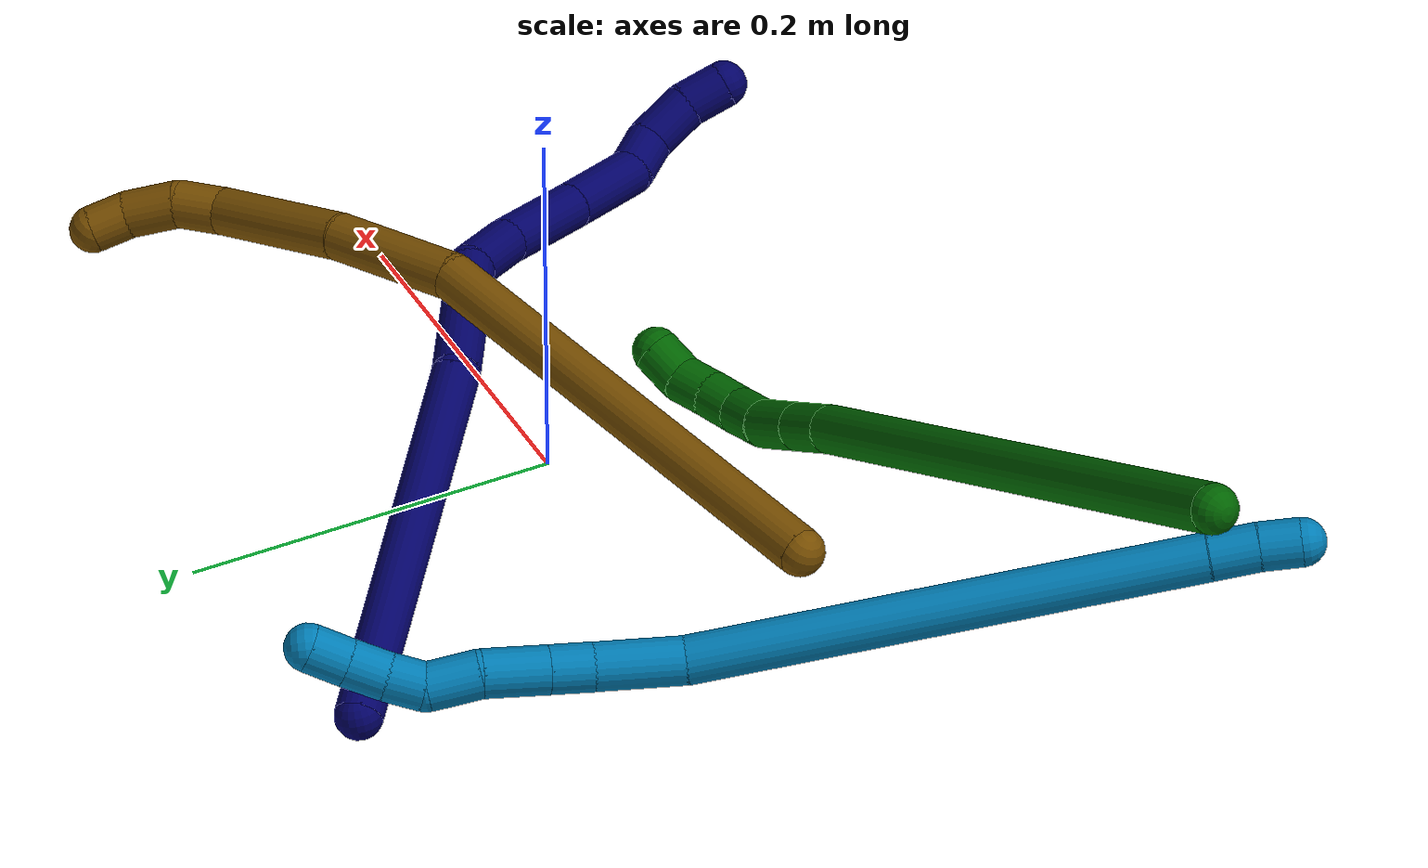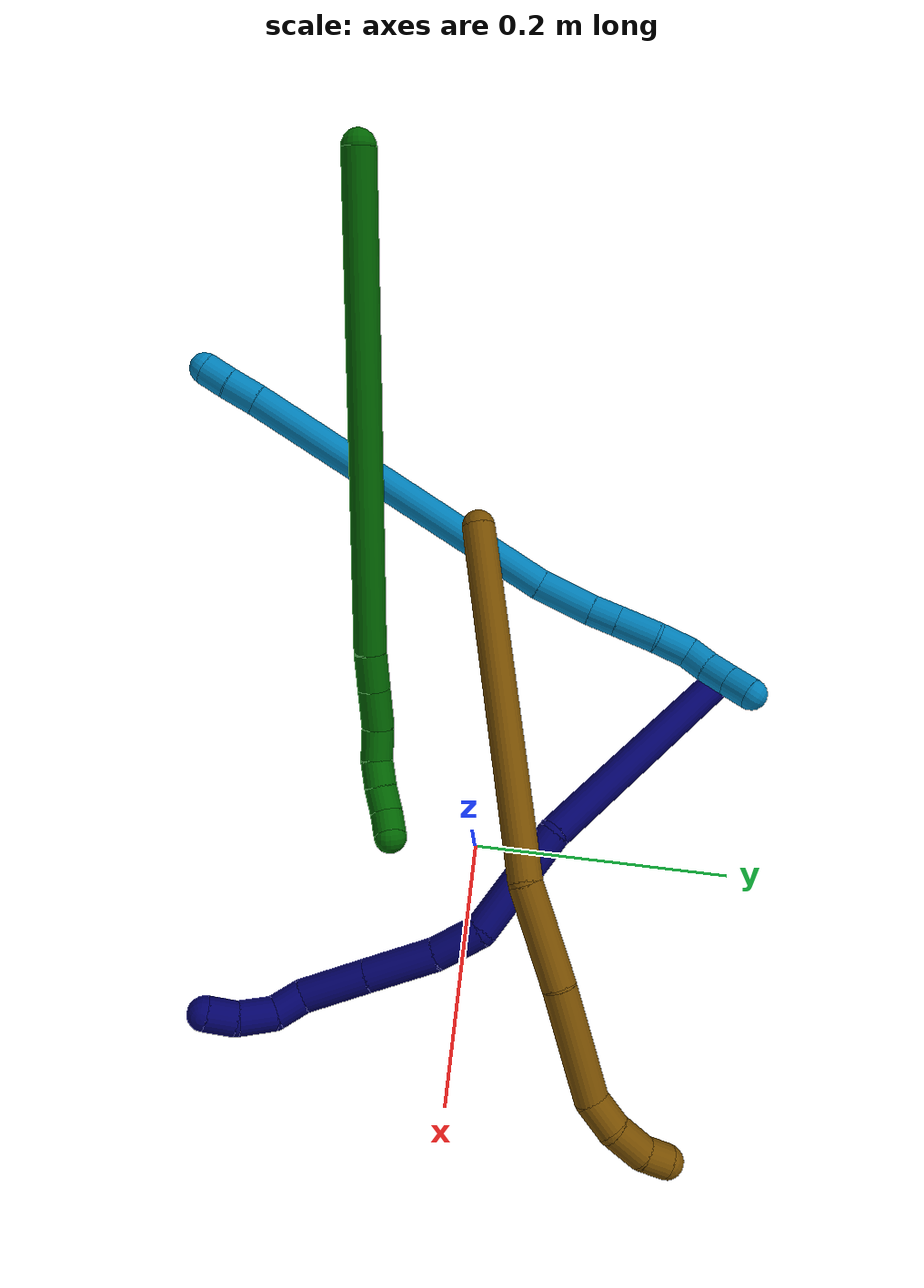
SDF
<sdf version="1.7">
 <world name="default">
  <model name="6">
   <static>0</static>
   <link name="6">
    <collision name="collision-cylinder-e_1_1_4">
     <pose>-0.025898 -0.013031 -0.173735 3.06672 -0.147569 -2.20367</pose>
     <geometry><cylinder><radius>0.0125</radius><length>0.352274</length></cylinder></geometry>
     <surface>
      <friction><ode><mu>1.16</mu><mu2>1.16</mu2><slip1>0</slip1><slip2>0</slip2></ode></friction>
      <contact><ode><kp>1e+06</kp><kd>1</kd><max_vel>0</max_vel><min_depth>0.001</min_depth></ode></contact>
     </surface>
    </collision>
    <visual name="visual-cylinder-e_1_1_4">
     <pose>-0.025898 -0.013031 -0.173735 3.06672 -0.147569 -2.20367</pose>
     <geometry><cylinder><radius>0.0125</radius><length>0.352274</length></cylinder></geometry>
     <material><ambient>0 0.392157 0.003922 1</ambient></material>
    </visual>
    <collision name="collision-cylinder-e_2_4_5">
     <pose>-0.054609 -0.026166 -0.36152 3.13427 -0.197544 -3.06777</pose>
     <geometry><cylinder><radius>0.0125</radius><length>0.028659</length></cylinder></geometry>
     <surface>
      <friction><ode><mu>1.16</mu><mu2>1.16</mu2><slip1>0</slip1><slip2>0</slip2></ode></friction>
      <contact><ode><kp>1e+06</kp><kd>1</kd><max_vel>0</max_vel><min_depth>0.001</min_depth></ode></contact>
     </surface>
    </collision>
    <visual name="visual-cylinder-e_2_4_5">
     <pose>-0.054609 -0.026166 -0.36152 3.13427 -0.197544 -3.06777</pose>
     <geometry><cylinder><radius>0.0125</radius><length>0.028659</length></cylinder></geometry>
     <material><ambient>0 0.392157 0.003922 1</ambient></material>
    </visual>
    <collision name="collision-cylinder-e_3_5_6">
     <pose>-0.060469 -0.026342 -0.391111 3.13688 -0.193667 -3.09305</pose>
     <geometry><cylinder><radius>0.0125</radius><length>0.031674</length></cylinder></geometry>
     <surface>
      <friction><ode><mu>1.16</mu><mu2>1.16</mu2><slip1>0</slip1><slip2>0</slip2></ode></friction>
      <contact><ode><kp>1e+06</kp><kd>1</kd><max_vel>0</max_vel><min_depth>0.001</min_depth></ode></contact>
     </surface>
    </collision>
    <visual name="visual-cylinder-e_3_5_6">
     <pose>-0.060469 -0.026342 -0.391111 3.13688 -0.193667 -3.09305</pose>
     <geometry><cylinder><radius>0.0125</radius><length>0.031674</length></cylinder></geometry>
     <material><ambient>0 0.392157 0.003922 1</ambient></material>
    </visual>
    <collision name="collision-cylinder-e_4_6_7">
     <pose>-0.063468 -0.027636 -0.41939 3.04608 0.003788 0.079218</pose>
     <geometry><cylinder><radius>0.0125</radius><length>0.025592</length></cylinder></geometry>
     <surface>
      <friction><ode><mu>1.16</mu><mu2>1.16</mu2><slip1>0</slip1><slip2>0</slip2></ode></friction>
      <contact><ode><kp>1e+06</kp><kd>1</kd><max_vel>0</max_vel><min_depth>0.001</min_depth></ode></contact>
     </surface>
    </collision>
    <visual name="visual-cylinder-e_4_6_7">
     <pose>-0.063468 -0.027636 -0.41939 3.04608 0.003788 0.079218</pose>
     <geometry><cylinder><radius>0.0125</radius><length>0.025592</length></cylinder></geometry>
     <material><ambient>0 0.392157 0.003922 1</ambient></material>
    </visual>
    <collision name="collision-cylinder-e_5_7_8">
     <pose>-0.061342 -0.027244 -0.442291 -2.98433 0.199252 -1.80648</pose>
     <geometry><cylinder><radius>0.0125</radius><length>0.020996</length></cylinder></geometry>
     <surface>
      <friction><ode><mu>1.16</mu><mu2>1.16</mu2><slip1>0</slip1><slip2>0</slip2></ode></friction>
      <contact><ode><kp>1e+06</kp><kd>1</kd><max_vel>0</max_vel><min_depth>0.001</min_depth></ode></contact>
     </surface>
    </collision>
    <visual name="visual-cylinder-e_5_7_8">
     <pose>-0.061342 -0.027244 -0.442291 -2.98433 0.199252 -1.80648</pose>
     <geometry><cylinder><radius>0.0125</radius><length>0.020996</length></cylinder></geometry>
     <material><ambient>0 0.392157 0.003922 1</ambient></material>
    </visual>
    <collision name="collision-cylinder-e_6_8_9">
     <pose>-0.056896 -0.023016 -0.462125 -2.8773 0.23214 -1.44011</pose>
     <geometry><cylinder><radius>0.0125</radius><length>0.020589</length></cylinder></geometry>
     <surface>
      <friction><ode><mu>1.16</mu><mu2>1.16</mu2><slip1>0</slip1><slip2>0</slip2></ode></friction>
      <contact><ode><kp>1e+06</kp><kd>1</kd><max_vel>0</max_vel><min_depth>0.001</min_depth></ode></contact>
     </surface>
    </collision>
    <visual name="visual-cylinder-e_6_8_9">
     <pose>-0.056896 -0.023016 -0.462125 -2.8773 0.23214 -1.44011</pose>
     <geometry><cylinder><radius>0.0125</radius><length>0.020589</length></cylinder></geometry>
     <material><ambient>0 0.392157 0.003922 1</ambient></material>
    </visual>
    <collision name="collision-cylinder-e_7_9_2">
     <pose>-0.048526 -0.017561 -0.479418 -2.78529 0.635651 -2.14</pose>
     <geometry><cylinder><radius>0.0125</radius><length>0.020215</length></cylinder></geometry>
     <surface>
      <friction><ode><mu>1.16</mu><mu2>1.16</mu2><slip1>0</slip1><slip2>0</slip2></ode></friction>
      <contact><ode><kp>1e+06</kp><kd>1</kd><max_vel>0</max_vel><min_depth>0.001</min_depth></ode></contact>
     </surface>
    </collision>
    <visual name="visual-cylinder-e_7_9_2">
     <pose>-0.048526 -0.017561 -0.479418 -2.78529 0.635651 -2.14</pose>
     <geometry><cylinder><radius>0.0125</radius><length>0.020215</length></cylinder></geometry>
     <material><ambient>0 0.392157 0.003922 1</ambient></material>
    </visual>
    <collision name="collision-sphere-2">
     <pose>-0.042526 -0.014724 -0.48704 0 -0 0</pose>
     <geometry><sphere><radius>0.0125</radius></sphere></geometry>
     <surface>
      <friction><ode><mu>1.16</mu><mu2>1.16</mu2><slip1>0</slip1><slip2>0</slip2></ode></friction>
      <contact><ode><kp>1e+06</kp><kd>1</kd><max_vel>0</max_vel><min_depth>0.001</min_depth></ode></contact>
     </surface>
    </collision>
    <visual name="visual-sphere-2">
     <pose>-0.042526 -0.014724 -0.48704 0 -0 0</pose>
     <geometry><sphere><radius>0.0125</radius></sphere></geometry>
     <material><ambient>0 0.392157 0.003922 1</ambient></material>
    </visual>
    <collision name="collision-sphere-9">
     <pose>-0.054527 -0.020398 -0.471795 0 -0 0</pose>
     <geometry><sphere><radius>0.0125</radius></sphere></geometry>
     <surface>
      <friction><ode><mu>1.16</mu><mu2>1.16</mu2><slip1>0</slip1><slip2>0</slip2></ode></friction>
      <contact><ode><kp>1e+06</kp><kd>1</kd><max_vel>0</max_vel><min_depth>0.001</min_depth></ode></contact>
     </surface>
    </collision>
    <visual name="visual-sphere-9">
     <pose>-0.054527 -0.020398 -0.471795 0 -0 0</pose>
     <geometry><sphere><radius>0.0125</radius></sphere></geometry>
     <material><ambient>0 0.392157 0.003922 1</ambient></material>
    </visual>
    <collision name="collision-sphere-4">
     <pose>-0.051796 -0.026063 -0.347469 0 -0 0</pose>
     <geometry><sphere><radius>0.0125</radius></sphere></geometry>
     <surface>
      <friction><ode><mu>1.16</mu><mu2>1.16</mu2><slip1>0</slip1><slip2>0</slip2></ode></friction>
      <contact><ode><kp>1e+06</kp><kd>1</kd><max_vel>0</max_vel><min_depth>0.001</min_depth></ode></contact>
     </surface>
    </collision>
    <visual name="visual-sphere-4">
     <pose>-0.051796 -0.026063 -0.347469 0 -0 0</pose>
     <geometry><sphere><radius>0.0125</radius></sphere></geometry>
     <material><ambient>0 0.392157 0.003922 1</ambient></material>
    </visual>
    <collision name="collision-sphere-1">
     <geometry><sphere><radius>0.0125</radius></sphere></geometry>
     <surface>
      <friction><ode><mu>1.16</mu><mu2>1.16</mu2><slip1>0</slip1><slip2>0</slip2></ode></friction>
      <contact><ode><kp>1e+06</kp><kd>1</kd><max_vel>0</max_vel><min_depth>0.001</min_depth></ode></contact>
     </surface>
    </collision>
    <visual name="visual-sphere-1">
     <geometry><sphere><radius>0.0125</radius></sphere></geometry>
     <material><ambient>0 0.392157 0.003922 1</ambient></material>
    </visual>
    <collision name="collision-sphere-8">
     <pose>-0.059264 -0.025633 -0.452454 0 -0 0</pose>
     <geometry><sphere><radius>0.0125</radius></sphere></geometry>
     <surface>
      <friction><ode><mu>1.16</mu><mu2>1.16</mu2><slip1>0</slip1><slip2>0</slip2></ode></friction>
      <contact><ode><kp>1e+06</kp><kd>1</kd><max_vel>0</max_vel><min_depth>0.001</min_depth></ode></contact>
     </surface>
    </collision>
    <visual name="visual-sphere-8">
     <pose>-0.059264 -0.025633 -0.452454 0 -0 0</pose>
     <geometry><sphere><radius>0.0125</radius></sphere></geometry>
     <material><ambient>0 0.392157 0.003922 1</ambient></material>
    </visual>
    <collision name="collision-sphere-5">
     <pose>-0.057421 -0.026269 -0.37557 0 -0 0</pose>
     <geometry><sphere><radius>0.0125</radius></sphere></geometry>
     <surface>
      <friction><ode><mu>1.16</mu><mu2>1.16</mu2><slip1>0</slip1><slip2>0</slip2></ode></friction>
      <contact><ode><kp>1e+06</kp><kd>1</kd><max_vel>0</max_vel><min_depth>0.001</min_depth></ode></contact>
     </surface>
    </collision>
    <visual name="visual-sphere-5">
     <pose>-0.057421 -0.026269 -0.37557 0 -0 0</pose>
     <geometry><sphere><radius>0.0125</radius></sphere></geometry>
     <material><ambient>0 0.392157 0.003922 1</ambient></material>
    </visual>
    <collision name="collision-sphere-6">
     <pose>-0.063517 -0.026415 -0.406652 0 -0 0</pose>
     <geometry><sphere><radius>0.0125</radius></sphere></geometry>
     <surface>
      <friction><ode><mu>1.16</mu><mu2>1.16</mu2><slip1>0</slip1><slip2>0</slip2></ode></friction>
      <contact><ode><kp>1e+06</kp><kd>1</kd><max_vel>0</max_vel><min_depth>0.001</min_depth></ode></contact>
     </surface>
    </collision>
    <visual name="visual-sphere-6">
     <pose>-0.063517 -0.026415 -0.406652 0 -0 0</pose>
     <geometry><sphere><radius>0.0125</radius></sphere></geometry>
     <material><ambient>0 0.392157 0.003922 1</ambient></material>
    </visual>
    <collision name="collision-sphere-7">
     <pose>-0.06342 -0.028856 -0.432127 0 -0 0</pose>
     <geometry><sphere><radius>0.0125</radius></sphere></geometry>
     <surface>
      <friction><ode><mu>1.16</mu><mu2>1.16</mu2><slip1>0</slip1><slip2>0</slip2></ode></friction>
      <contact><ode><kp>1e+06</kp><kd>1</kd><max_vel>0</max_vel><min_depth>0.001</min_depth></ode></contact>
     </surface>
    </collision>
    <visual name="visual-sphere-7">
     <pose>-0.06342 -0.028856 -0.432127 0 -0 0</pose>
     <geometry><sphere><radius>0.0125</radius></sphere></geometry>
     <material><ambient>0 0.392157 0.003922 1</ambient></material>
    </visual>
    <inertial>
     <pose>-0.035336 -0.016566 -0.246354 0 -0 0</pose>
     <mass>0.5</mass>
     <inertia>
      <ixx>-0.005069</ixx>
      <ixy>0</ixy>
      <ixz>0</ixz>
      <iyy>-0.000727</iyy>
      <iyz>0</iyz>
      <izz>0.000769</izz>
     </inertia>
    </inertial>
   </link>
   <pose>-0.443478 -0.13061 0.23605 0.595372 -1.20321 -0.468026</pose>
  </model>
  <model name="7">
   <static>0</static>
   <link name="7">
    <collision name="collision-cylinder-e_1_1_4">
     <pose>0.082535 -0.0284 0.049938 0.517095 0.962729 0.274549</pose>
     <geometry><cylinder><radius>0.0125</radius><length>0.201121</length></cylinder></geometry>
     <surface>
      <friction><ode><mu>1.16</mu><mu2>1.16</mu2><slip1>0</slip1><slip2>0</slip2></ode></friction>
      <contact><ode><kp>1e+06</kp><kd>1</kd><max_vel>0</max_vel><min_depth>0.001</min_depth></ode></contact>
     </surface>
    </collision>
    <visual name="visual-cylinder-e_1_1_4">
     <pose>0.082535 -0.0284 0.049938 0.517095 0.962729 0.274549</pose>
     <geometry><cylinder><radius>0.0125</radius><length>0.201121</length></cylinder></geometry>
     <material><ambient>0.003922 0 0.403922 1</ambient></material>
    </visual>
    <collision name="collision-cylinder-e_2_4_5">
     <pose>0.20745 -0.059369 0.109117 0.271133 1.34821 0.217104</pose>
     <geometry><cylinder><radius>0.0125</radius><length>0.086903</length></cylinder></geometry>
     <surface>
      <friction><ode><mu>1.16</mu><mu2>1.16</mu2><slip1>0</slip1><slip2>0</slip2></ode></friction>
      <contact><ode><kp>1e+06</kp><kd>1</kd><max_vel>0</max_vel><min_depth>0.001</min_depth></ode></contact>
     </surface>
    </collision>
    <visual name="visual-cylinder-e_2_4_5">
     <pose>0.20745 -0.059369 0.109117 0.271133 1.34821 0.217104</pose>
     <geometry><cylinder><radius>0.0125</radius><length>0.086903</length></cylinder></geometry>
     <material><ambient>0.003922 0 0.403922 1</ambient></material>
    </visual>
    <collision name="collision-cylinder-e_3_5_6">
     <pose>0.266311 -0.069696 0.116656 1.78675 1.12172 1.32595</pose>
     <geometry><cylinder><radius>0.0125</radius><length>0.036591</length></cylinder></geometry>
     <surface>
      <friction><ode><mu>1.16</mu><mu2>1.16</mu2><slip1>0</slip1><slip2>0</slip2></ode></friction>
      <contact><ode><kp>1e+06</kp><kd>1</kd><max_vel>0</max_vel><min_depth>0.001</min_depth></ode></contact>
     </surface>
    </collision>
    <visual name="visual-cylinder-e_3_5_6">
     <pose>0.266311 -0.069696 0.116656 1.78675 1.12172 1.32595</pose>
     <geometry><cylinder><radius>0.0125</radius><length>0.036591</length></cylinder></geometry>
     <material><ambient>0.003922 0 0.403922 1</ambient></material>
    </visual>
    <collision name="collision-cylinder-e_4_6_7">
     <pose>0.304013 -0.092706 0.112703 1.71736 0.942496 1.06648</pose>
     <geometry><cylinder><radius>0.0125</radius><length>0.052459</length></cylinder></geometry>
     <surface>
      <friction><ode><mu>1.16</mu><mu2>1.16</mu2><slip1>0</slip1><slip2>0</slip2></ode></friction>
      <contact><ode><kp>1e+06</kp><kd>1</kd><max_vel>0</max_vel><min_depth>0.001</min_depth></ode></contact>
     </surface>
    </collision>
    <visual name="visual-cylinder-e_4_6_7">
     <pose>0.304013 -0.092706 0.112703 1.71736 0.942496 1.06648</pose>
     <geometry><cylinder><radius>0.0125</radius><length>0.052459</length></cylinder></geometry>
     <material><ambient>0.003922 0 0.403922 1</ambient></material>
    </visual>
    <collision name="collision-cylinder-e_5_7_8">
     <pose>0.345304 -0.12241 0.108769 1.68673 0.94352 1.04072</pose>
     <geometry><cylinder><radius>0.0125</radius><length>0.049579</length></cylinder></geometry>
     <surface>
      <friction><ode><mu>1.16</mu><mu2>1.16</mu2><slip1>0</slip1><slip2>0</slip2></ode></friction>
      <contact><ode><kp>1e+06</kp><kd>1</kd><max_vel>0</max_vel><min_depth>0.001</min_depth></ode></contact>
     </surface>
    </collision>
    <visual name="visual-cylinder-e_5_7_8">
     <pose>0.345304 -0.12241 0.108769 1.68673 0.94352 1.04072</pose>
     <geometry><cylinder><radius>0.0125</radius><length>0.049579</length></cylinder></geometry>
     <material><ambient>0.003922 0 0.403922 1</ambient></material>
    </visual>
    <collision name="collision-cylinder-e_6_8_9">
     <pose>0.375024 -0.141948 0.110815 0.938065 0.991999 0.535266</pose>
     <geometry><cylinder><radius>0.0125</radius><length>0.023057</length></cylinder></geometry>
     <surface>
      <friction><ode><mu>1.16</mu><mu2>1.16</mu2><slip1>0</slip1><slip2>0</slip2></ode></friction>
      <contact><ode><kp>1e+06</kp><kd>1</kd><max_vel>0</max_vel><min_depth>0.001</min_depth></ode></contact>
     </surface>
    </collision>
    <visual name="visual-cylinder-e_6_8_9">
     <pose>0.375024 -0.141948 0.110815 0.938065 0.991999 0.535266</pose>
     <geometry><cylinder><radius>0.0125</radius><length>0.023057</length></cylinder></geometry>
     <material><ambient>0.003922 0 0.403922 1</ambient></material>
    </visual>
    <collision name="collision-cylinder-e_7_9_10">
     <pose>0.391998 -0.157547 0.1199 1.09968 0.555461 0.345974</pose>
     <geometry><cylinder><radius>0.0125</radius><length>0.027774</length></cylinder></geometry>
     <surface>
      <friction><ode><mu>1.16</mu><mu2>1.16</mu2><slip1>0</slip1><slip2>0</slip2></ode></friction>
      <contact><ode><kp>1e+06</kp><kd>1</kd><max_vel>0</max_vel><min_depth>0.001</min_depth></ode></contact>
     </surface>
    </collision>
    <visual name="visual-cylinder-e_7_9_10">
     <pose>0.391998 -0.157547 0.1199 1.09968 0.555461 0.345974</pose>
     <geometry><cylinder><radius>0.0125</radius><length>0.027774</length></cylinder></geometry>
     <material><ambient>0.003922 0 0.403922 1</ambient></material>
    </visual>
    <collision name="collision-cylinder-e_8_10_2">
     <pose>0.402838 -0.178399 0.127996 1.31161 0.317691 0.245273</pose>
     <geometry><cylinder><radius>0.0125</radius><length>0.022516</length></cylinder></geometry>
     <surface>
      <friction><ode><mu>1.16</mu><mu2>1.16</mu2><slip1>0</slip1><slip2>0</slip2></ode></friction>
      <contact><ode><kp>1e+06</kp><kd>1</kd><max_vel>0</max_vel><min_depth>0.001</min_depth></ode></contact>
     </surface>
    </collision>
    <visual name="visual-cylinder-e_8_10_2">
     <pose>0.402838 -0.178399 0.127996 1.31161 0.317691 0.245273</pose>
     <geometry><cylinder><radius>0.0125</radius><length>0.022516</length></cylinder></geometry>
     <material><ambient>0.003922 0 0.403922 1</ambient></material>
    </visual>
    <collision name="collision-sphere-2">
     <pose>0.406355 -0.188736 0.130737 0 -0 0</pose>
     <geometry><sphere><radius>0.0125</radius></sphere></geometry>
     <surface>
      <friction><ode><mu>1.16</mu><mu2>1.16</mu2><slip1>0</slip1><slip2>0</slip2></ode></friction>
      <contact><ode><kp>1e+06</kp><kd>1</kd><max_vel>0</max_vel><min_depth>0.001</min_depth></ode></contact>
     </surface>
    </collision>
    <visual name="visual-sphere-2">
     <pose>0.406355 -0.188736 0.130737 0 -0 0</pose>
     <geometry><sphere><radius>0.0125</radius></sphere></geometry>
     <material><ambient>0.003922 0 0.403922 1</ambient></material>
    </visual>
    <collision name="collision-sphere-10">
     <pose>0.399322 -0.168061 0.125255 0 -0 0</pose>
     <geometry><sphere><radius>0.0125</radius></sphere></geometry>
     <surface>
      <friction><ode><mu>1.16</mu><mu2>1.16</mu2><slip1>0</slip1><slip2>0</slip2></ode></friction>
      <contact><ode><kp>1e+06</kp><kd>1</kd><max_vel>0</max_vel><min_depth>0.001</min_depth></ode></contact>
     </surface>
    </collision>
    <visual name="visual-sphere-10">
     <pose>0.399322 -0.168061 0.125255 0 -0 0</pose>
     <geometry><sphere><radius>0.0125</radius></sphere></geometry>
     <material><ambient>0.003922 0 0.403922 1</ambient></material>
    </visual>
    <collision name="collision-sphere-9">
     <pose>0.384675 -0.147033 0.114544 0 -0 0</pose>
     <geometry><sphere><radius>0.0125</radius></sphere></geometry>
     <surface>
      <friction><ode><mu>1.16</mu><mu2>1.16</mu2><slip1>0</slip1><slip2>0</slip2></ode></friction>
      <contact><ode><kp>1e+06</kp><kd>1</kd><max_vel>0</max_vel><min_depth>0.001</min_depth></ode></contact>
     </surface>
    </collision>
    <visual name="visual-sphere-9">
     <pose>0.384675 -0.147033 0.114544 0 -0 0</pose>
     <geometry><sphere><radius>0.0125</radius></sphere></geometry>
     <material><ambient>0.003922 0 0.403922 1</ambient></material>
    </visual>
    <collision name="collision-sphere-4">
     <pose>0.165071 -0.0568 0.099875 0 -0 0</pose>
     <geometry><sphere><radius>0.0125</radius></sphere></geometry>
     <surface>
      <friction><ode><mu>1.16</mu><mu2>1.16</mu2><slip1>0</slip1><slip2>0</slip2></ode></friction>
      <contact><ode><kp>1e+06</kp><kd>1</kd><max_vel>0</max_vel><min_depth>0.001</min_depth></ode></contact>
     </surface>
    </collision>
    <visual name="visual-sphere-4">
     <pose>0.165071 -0.0568 0.099875 0 -0 0</pose>
     <geometry><sphere><radius>0.0125</radius></sphere></geometry>
     <material><ambient>0.003922 0 0.403922 1</ambient></material>
    </visual>
    <collision name="collision-sphere-1">
     <geometry><sphere><radius>0.0125</radius></sphere></geometry>
     <surface>
      <friction><ode><mu>1.16</mu><mu2>1.16</mu2><slip1>0</slip1><slip2>0</slip2></ode></friction>
      <contact><ode><kp>1e+06</kp><kd>1</kd><max_vel>0</max_vel><min_depth>0.001</min_depth></ode></contact>
     </surface>
    </collision>
    <visual name="visual-sphere-1">
     <geometry><sphere><radius>0.0125</radius></sphere></geometry>
     <material><ambient>0.003922 0 0.403922 1</ambient></material>
    </visual>
    <collision name="collision-sphere-8">
     <pose>0.365374 -0.136862 0.107086 0 -0 0</pose>
     <geometry><sphere><radius>0.0125</radius></sphere></geometry>
     <surface>
      <friction><ode><mu>1.16</mu><mu2>1.16</mu2><slip1>0</slip1><slip2>0</slip2></ode></friction>
      <contact><ode><kp>1e+06</kp><kd>1</kd><max_vel>0</max_vel><min_depth>0.001</min_depth></ode></contact>
     </surface>
    </collision>
    <visual name="visual-sphere-8">
     <pose>0.365374 -0.136862 0.107086 0 -0 0</pose>
     <geometry><sphere><radius>0.0125</radius></sphere></geometry>
     <material><ambient>0.003922 0 0.403922 1</ambient></material>
    </visual>
    <collision name="collision-sphere-5">
     <pose>0.24983 -0.061938 0.118358 0 -0 0</pose>
     <geometry><sphere><radius>0.0125</radius></sphere></geometry>
     <surface>
      <friction><ode><mu>1.16</mu><mu2>1.16</mu2><slip1>0</slip1><slip2>0</slip2></ode></friction>
      <contact><ode><kp>1e+06</kp><kd>1</kd><max_vel>0</max_vel><min_depth>0.001</min_depth></ode></contact>
     </surface>
    </collision>
    <visual name="visual-sphere-5">
     <pose>0.24983 -0.061938 0.118358 0 -0 0</pose>
     <geometry><sphere><radius>0.0125</radius></sphere></geometry>
     <material><ambient>0.003922 0 0.403922 1</ambient></material>
    </visual>
    <collision name="collision-sphere-6">
     <pose>0.282792 -0.077454 0.114954 0 -0 0</pose>
     <geometry><sphere><radius>0.0125</radius></sphere></geometry>
     <surface>
      <friction><ode><mu>1.16</mu><mu2>1.16</mu2><slip1>0</slip1><slip2>0</slip2></ode></friction>
      <contact><ode><kp>1e+06</kp><kd>1</kd><max_vel>0</max_vel><min_depth>0.001</min_depth></ode></contact>
     </surface>
    </collision>
    <visual name="visual-sphere-6">
     <pose>0.282792 -0.077454 0.114954 0 -0 0</pose>
     <geometry><sphere><radius>0.0125</radius></sphere></geometry>
     <material><ambient>0.003922 0 0.403922 1</ambient></material>
    </visual>
    <collision name="collision-sphere-7">
     <pose>0.325233 -0.107958 0.110452 0 -0 0</pose>
     <geometry><sphere><radius>0.0125</radius></sphere></geometry>
     <surface>
      <friction><ode><mu>1.16</mu><mu2>1.16</mu2><slip1>0</slip1><slip2>0</slip2></ode></friction>
      <contact><ode><kp>1e+06</kp><kd>1</kd><max_vel>0</max_vel><min_depth>0.001</min_depth></ode></contact>
     </surface>
    </collision>
    <visual name="visual-sphere-7">
     <pose>0.325233 -0.107958 0.110452 0 -0 0</pose>
     <geometry><sphere><radius>0.0125</radius></sphere></geometry>
     <material><ambient>0.003922 0 0.403922 1</ambient></material>
    </visual>
    <inertial>
     <pose>0.21209 -0.072038 0.087733 0 -0 0</pose>
     <mass>0.5</mass>
     <inertia>
      <ixx>0.000561</ixx>
      <ixy>0</ixy>
      <ixz>0</ixz>
      <iyy>0.000844</iyy>
      <iyz>0</iyz>
      <izz>-0.00042</izz>
     </inertia>
    </inertial>
   </link>
   <pose>-0.152723 0.178597 0.01168 -0.197931 0.200855 -0.519104</pose>
  </model>
  <model name="9">
   <static>0</static>
   <link name="9">
    <collision name="collision-cylinder-e_1_1_4">
     <pose>6.3e-05 0.000123 -0.010517 -3.12993 0.006019 -0.953171</pose>
     <geometry><cylinder><radius>0.0125</radius><length>0.021037</length></cylinder></geometry>
     <surface>
      <friction><ode><mu>1.16</mu><mu2>1.16</mu2><slip1>0</slip1><slip2>0</slip2></ode></friction>
      <contact><ode><kp>1e+06</kp><kd>1</kd><max_vel>0</max_vel><min_depth>0.001</min_depth></ode></contact>
     </surface>
    </collision>
    <visual name="visual-cylinder-e_1_1_4">
     <pose>6.3e-05 0.000123 -0.010517 -3.12993 0.006019 -0.953171</pose>
     <geometry><cylinder><radius>0.0125</radius><length>0.021037</length></cylinder></geometry>
     <material><ambient>0 0.490196 0.709804 1</ambient></material>
    </visual>
    <collision name="collision-cylinder-e_2_4_5">
     <pose>-0.000847 0.000226 -0.033439 3.14005 -0.078333 -3.10228</pose>
     <geometry><cylinder><radius>0.0125</radius><length>0.024885</length></cylinder></geometry>
     <surface>
      <friction><ode><mu>1.16</mu><mu2>1.16</mu2><slip1>0</slip1><slip2>0</slip2></ode></friction>
      <contact><ode><kp>1e+06</kp><kd>1</kd><max_vel>0</max_vel><min_depth>0.001</min_depth></ode></contact>
     </surface>
    </collision>
    <visual name="visual-cylinder-e_2_4_5">
     <pose>-0.000847 0.000226 -0.033439 3.14005 -0.078333 -3.10228</pose>
     <geometry><cylinder><radius>0.0125</radius><length>0.024885</length></cylinder></geometry>
     <material><ambient>0 0.490196 0.709804 1</ambient></material>
    </visual>
    <collision name="collision-cylinder-e_3_5_6">
     <pose>-0.01065 -0.006647 -0.176785 3.0893 -0.067236 -1.81967</pose>
     <geometry><cylinder><radius>0.0125</radius><length>0.262836</length></cylinder></geometry>
     <surface>
      <friction><ode><mu>1.16</mu><mu2>1.16</mu2><slip1>0</slip1><slip2>0</slip2></ode></friction>
      <contact><ode><kp>1e+06</kp><kd>1</kd><max_vel>0</max_vel><min_depth>0.001</min_depth></ode></contact>
     </surface>
    </collision>
    <visual name="visual-cylinder-e_3_5_6">
     <pose>-0.01065 -0.006647 -0.176785 3.0893 -0.067236 -1.81967</pose>
     <geometry><cylinder><radius>0.0125</radius><length>0.262836</length></cylinder></geometry>
     <material><ambient>0 0.490196 0.709804 1</ambient></material>
    </visual>
    <collision name="collision-cylinder-e_4_6_7">
     <pose>-0.019139 -0.009916 -0.330488 -2.98542 0.014763 -0.18812</pose>
     <geometry><cylinder><radius>0.0125</radius><length>0.046089</length></cylinder></geometry>
     <surface>
      <friction><ode><mu>1.16</mu><mu2>1.16</mu2><slip1>0</slip1><slip2>0</slip2></ode></friction>
      <contact><ode><kp>1e+06</kp><kd>1</kd><max_vel>0</max_vel><min_depth>0.001</min_depth></ode></contact>
     </surface>
    </collision>
    <visual name="visual-cylinder-e_4_6_7">
     <pose>-0.019139 -0.009916 -0.330488 -2.98542 0.014763 -0.18812</pose>
     <geometry><cylinder><radius>0.0125</radius><length>0.046089</length></cylinder></geometry>
     <material><ambient>0 0.490196 0.709804 1</ambient></material>
    </visual>
    <collision name="collision-cylinder-e_5_7_8">
     <pose>-0.018744 -0.003737 -0.364171 -2.90827 0.004936 -0.042112</pose>
     <geometry><cylinder><radius>0.0125</radius><length>0.022451</length></cylinder></geometry>
     <surface>
      <friction><ode><mu>1.16</mu><mu2>1.16</mu2><slip1>0</slip1><slip2>0</slip2></ode></friction>
      <contact><ode><kp>1e+06</kp><kd>1</kd><max_vel>0</max_vel><min_depth>0.001</min_depth></ode></contact>
     </surface>
    </collision>
    <visual name="visual-cylinder-e_5_7_8">
     <pose>-0.018744 -0.003737 -0.364171 -2.90827 0.004936 -0.042112</pose>
     <geometry><cylinder><radius>0.0125</radius><length>0.022451</length></cylinder></geometry>
     <material><ambient>0 0.490196 0.709804 1</ambient></material>
    </visual>
    <collision name="collision-cylinder-e_6_8_9">
     <pose>-0.018517 0.002705 -0.391466 -2.91088 0.010187 -0.087864</pose>
     <geometry><cylinder><radius>0.0125</radius><length>0.03364</length></cylinder></geometry>
     <surface>
      <friction><ode><mu>1.16</mu><mu2>1.16</mu2><slip1>0</slip1><slip2>0</slip2></ode></friction>
      <contact><ode><kp>1e+06</kp><kd>1</kd><max_vel>0</max_vel><min_depth>0.001</min_depth></ode></contact>
     </surface>
    </collision>
    <visual name="visual-cylinder-e_6_8_9">
     <pose>-0.018517 0.002705 -0.391466 -2.91088 0.010187 -0.087864</pose>
     <geometry><cylinder><radius>0.0125</radius><length>0.03364</length></cylinder></geometry>
     <material><ambient>0 0.490196 0.709804 1</ambient></material>
    </visual>
    <collision name="collision-cylinder-e_7_9_10">
     <pose>-0.020263 0.007423 -0.421522 -3.07791 -0.13899 2.28334</pose>
     <geometry><cylinder><radius>0.0125</radius><length>0.027686</length></cylinder></geometry>
     <surface>
      <friction><ode><mu>1.16</mu><mu2>1.16</mu2><slip1>0</slip1><slip2>0</slip2></ode></friction>
      <contact><ode><kp>1e+06</kp><kd>1</kd><max_vel>0</max_vel><min_depth>0.001</min_depth></ode></contact>
     </surface>
    </collision>
    <visual name="visual-cylinder-e_7_9_10">
     <pose>-0.020263 0.007423 -0.421522 -3.07791 -0.13899 2.28334</pose>
     <geometry><cylinder><radius>0.0125</radius><length>0.027686</length></cylinder></geometry>
     <material><ambient>0 0.490196 0.709804 1</ambient></material>
    </visual>
    <collision name="collision-cylinder-e_8_10_11">
     <pose>-0.018756 0.01 -0.44445 -2.95934 0.349343 -2.18598</pose>
     <geometry><cylinder><radius>0.0125</radius><length>0.020012</length></cylinder></geometry>
     <surface>
      <friction><ode><mu>1.16</mu><mu2>1.16</mu2><slip1>0</slip1><slip2>0</slip2></ode></friction>
      <contact><ode><kp>1e+06</kp><kd>1</kd><max_vel>0</max_vel><min_depth>0.001</min_depth></ode></contact>
     </surface>
    </collision>
    <visual name="visual-cylinder-e_8_10_11">
     <pose>-0.018756 0.01 -0.44445 -2.95934 0.349343 -2.18598</pose>
     <geometry><cylinder><radius>0.0125</radius><length>0.020012</length></cylinder></geometry>
     <material><ambient>0 0.490196 0.709804 1</ambient></material>
    </visual>
    <collision name="collision-cylinder-e_9_11_12">
     <pose>-0.011292 0.014854 -0.462888 -2.8114 0.393925 -1.75021</pose>
     <geometry><cylinder><radius>0.0125</radius><length>0.021046</length></cylinder></geometry>
     <surface>
      <friction><ode><mu>1.16</mu><mu2>1.16</mu2><slip1>0</slip1><slip2>0</slip2></ode></friction>
      <contact><ode><kp>1e+06</kp><kd>1</kd><max_vel>0</max_vel><min_depth>0.001</min_depth></ode></contact>
     </surface>
    </collision>
    <visual name="visual-cylinder-e_9_11_12">
     <pose>-0.011292 0.014854 -0.462888 -2.8114 0.393925 -1.75021</pose>
     <geometry><cylinder><radius>0.0125</radius><length>0.021046</length></cylinder></geometry>
     <material><ambient>0 0.490196 0.709804 1</ambient></material>
    </visual>
    <collision name="collision-cylinder-e_10_12_2">
     <pose>-0.003188 0.021376 -0.480758 -2.77109 0.411708 -1.67878</pose>
     <geometry><cylinder><radius>0.0125</radius><length>0.020317</length></cylinder></geometry>
     <surface>
      <friction><ode><mu>1.16</mu><mu2>1.16</mu2><slip1>0</slip1><slip2>0</slip2></ode></friction>
      <contact><ode><kp>1e+06</kp><kd>1</kd><max_vel>0</max_vel><min_depth>0.001</min_depth></ode></contact>
     </surface>
    </collision>
    <visual name="visual-cylinder-e_10_12_2">
     <pose>-0.003188 0.021376 -0.480758 -2.77109 0.411708 -1.67878</pose>
     <geometry><cylinder><radius>0.0125</radius><length>0.020317</length></cylinder></geometry>
     <material><ambient>0 0.490196 0.709804 1</ambient></material>
    </visual>
    <collision name="collision-sphere-2">
     <pose>0.000877 0.024747 -0.489436 0 -0 0</pose>
     <geometry><sphere><radius>0.0125</radius></sphere></geometry>
     <surface>
      <friction><ode><mu>1.16</mu><mu2>1.16</mu2><slip1>0</slip1><slip2>0</slip2></ode></friction>
      <contact><ode><kp>1e+06</kp><kd>1</kd><max_vel>0</max_vel><min_depth>0.001</min_depth></ode></contact>
     </surface>
    </collision>
    <visual name="visual-sphere-2">
     <pose>0.000877 0.024747 -0.489436 0 -0 0</pose>
     <geometry><sphere><radius>0.0125</radius></sphere></geometry>
     <material><ambient>0 0.490196 0.709804 1</ambient></material>
    </visual>
    <collision name="collision-sphere-12">
     <pose>-0.007253 0.018005 -0.47208 0 -0 0</pose>
     <geometry><sphere><radius>0.0125</radius></sphere></geometry>
     <surface>
      <friction><ode><mu>1.16</mu><mu2>1.16</mu2><slip1>0</slip1><slip2>0</slip2></ode></friction>
      <contact><ode><kp>1e+06</kp><kd>1</kd><max_vel>0</max_vel><min_depth>0.001</min_depth></ode></contact>
     </surface>
    </collision>
    <visual name="visual-sphere-12">
     <pose>-0.007253 0.018005 -0.47208 0 -0 0</pose>
     <geometry><sphere><radius>0.0125</radius></sphere></geometry>
     <material><ambient>0 0.490196 0.709804 1</ambient></material>
    </visual>
    <collision name="collision-sphere-11">
     <pose>-0.015331 0.011704 -0.453696 0 -0 0</pose>
     <geometry><sphere><radius>0.0125</radius></sphere></geometry>
     <surface>
      <friction><ode><mu>1.16</mu><mu2>1.16</mu2><slip1>0</slip1><slip2>0</slip2></ode></friction>
      <contact><ode><kp>1e+06</kp><kd>1</kd><max_vel>0</max_vel><min_depth>0.001</min_depth></ode></contact>
     </surface>
    </collision>
    <visual name="visual-sphere-11">
     <pose>-0.015331 0.011704 -0.453696 0 -0 0</pose>
     <geometry><sphere><radius>0.0125</radius></sphere></geometry>
     <material><ambient>0 0.490196 0.709804 1</ambient></material>
    </visual>
    <collision name="collision-sphere-10">
     <pose>-0.022181 0.008296 -0.435204 0 -0 0</pose>
     <geometry><sphere><radius>0.0125</radius></sphere></geometry>
     <surface>
      <friction><ode><mu>1.16</mu><mu2>1.16</mu2><slip1>0</slip1><slip2>0</slip2></ode></friction>
      <contact><ode><kp>1e+06</kp><kd>1</kd><max_vel>0</max_vel><min_depth>0.001</min_depth></ode></contact>
     </surface>
    </collision>
    <visual name="visual-sphere-10">
     <pose>-0.022181 0.008296 -0.435204 0 -0 0</pose>
     <geometry><sphere><radius>0.0125</radius></sphere></geometry>
     <material><ambient>0 0.490196 0.709804 1</ambient></material>
    </visual>
    <collision name="collision-sphere-9">
     <pose>-0.018345 0.006551 -0.40784 0 -0 0</pose>
     <geometry><sphere><radius>0.0125</radius></sphere></geometry>
     <surface>
      <friction><ode><mu>1.16</mu><mu2>1.16</mu2><slip1>0</slip1><slip2>0</slip2></ode></friction>
      <contact><ode><kp>1e+06</kp><kd>1</kd><max_vel>0</max_vel><min_depth>0.001</min_depth></ode></contact>
     </surface>
    </collision>
    <visual name="visual-sphere-9">
     <pose>-0.018345 0.006551 -0.40784 0 -0 0</pose>
     <geometry><sphere><radius>0.0125</radius></sphere></geometry>
     <material><ambient>0 0.490196 0.709804 1</ambient></material>
    </visual>
    <collision name="collision-sphere-4">
     <pose>0.000127 0.000245 -0.021035 0 -0 0</pose>
     <geometry><sphere><radius>0.0125</radius></sphere></geometry>
     <surface>
      <friction><ode><mu>1.16</mu><mu2>1.16</mu2><slip1>0</slip1><slip2>0</slip2></ode></friction>
      <contact><ode><kp>1e+06</kp><kd>1</kd><max_vel>0</max_vel><min_depth>0.001</min_depth></ode></contact>
     </surface>
    </collision>
    <visual name="visual-sphere-4">
     <pose>0.000127 0.000245 -0.021035 0 -0 0</pose>
     <geometry><sphere><radius>0.0125</radius></sphere></geometry>
     <material><ambient>0 0.490196 0.709804 1</ambient></material>
    </visual>
    <collision name="collision-sphere-1">
     <geometry><sphere><radius>0.0125</radius></sphere></geometry>
     <surface>
      <friction><ode><mu>1.16</mu><mu2>1.16</mu2><slip1>0</slip1><slip2>0</slip2></ode></friction>
      <contact><ode><kp>1e+06</kp><kd>1</kd><max_vel>0</max_vel><min_depth>0.001</min_depth></ode></contact>
     </surface>
    </collision>
    <visual name="visual-sphere-1">
     <geometry><sphere><radius>0.0125</radius></sphere></geometry>
     <material><ambient>0 0.490196 0.709804 1</ambient></material>
    </visual>
    <collision name="collision-sphere-8">
     <pose>-0.018688 -0.001141 -0.375093 0 -0 0</pose>
     <geometry><sphere><radius>0.0125</radius></sphere></geometry>
     <surface>
      <friction><ode><mu>1.16</mu><mu2>1.16</mu2><slip1>0</slip1><slip2>0</slip2></ode></friction>
      <contact><ode><kp>1e+06</kp><kd>1</kd><max_vel>0</max_vel><min_depth>0.001</min_depth></ode></contact>
     </surface>
    </collision>
    <visual name="visual-sphere-8">
     <pose>-0.018688 -0.001141 -0.375093 0 -0 0</pose>
     <geometry><sphere><radius>0.0125</radius></sphere></geometry>
     <material><ambient>0 0.490196 0.709804 1</ambient></material>
    </visual>
    <collision name="collision-sphere-5">
     <pose>-0.001821 0.000207 -0.045843 0 -0 0</pose>
     <geometry><sphere><radius>0.0125</radius></sphere></geometry>
     <surface>
      <friction><ode><mu>1.16</mu><mu2>1.16</mu2><slip1>0</slip1><slip2>0</slip2></ode></friction>
      <contact><ode><kp>1e+06</kp><kd>1</kd><max_vel>0</max_vel><min_depth>0.001</min_depth></ode></contact>
     </surface>
    </collision>
    <visual name="visual-sphere-5">
     <pose>-0.001821 0.000207 -0.045843 0 -0 0</pose>
     <geometry><sphere><radius>0.0125</radius></sphere></geometry>
     <material><ambient>0 0.490196 0.709804 1</ambient></material>
    </visual>
    <collision name="collision-sphere-6">
     <pose>-0.019479 -0.0135 -0.307727 0 -0 0</pose>
     <geometry><sphere><radius>0.0125</radius></sphere></geometry>
     <surface>
      <friction><ode><mu>1.16</mu><mu2>1.16</mu2><slip1>0</slip1><slip2>0</slip2></ode></friction>
      <contact><ode><kp>1e+06</kp><kd>1</kd><max_vel>0</max_vel><min_depth>0.001</min_depth></ode></contact>
     </surface>
    </collision>
    <visual name="visual-sphere-6">
     <pose>-0.019479 -0.0135 -0.307727 0 -0 0</pose>
     <geometry><sphere><radius>0.0125</radius></sphere></geometry>
     <material><ambient>0 0.490196 0.709804 1</ambient></material>
    </visual>
    <collision name="collision-sphere-7">
     <pose>-0.018799 -0.006332 -0.35325 0 -0 0</pose>
     <geometry><sphere><radius>0.0125</radius></sphere></geometry>
     <surface>
      <friction><ode><mu>1.16</mu><mu2>1.16</mu2><slip1>0</slip1><slip2>0</slip2></ode></friction>
      <contact><ode><kp>1e+06</kp><kd>1</kd><max_vel>0</max_vel><min_depth>0.001</min_depth></ode></contact>
     </surface>
    </collision>
    <visual name="visual-sphere-7">
     <pose>-0.018799 -0.006332 -0.35325 0 -0 0</pose>
     <geometry><sphere><radius>0.0125</radius></sphere></geometry>
     <material><ambient>0 0.490196 0.709804 1</ambient></material>
    </visual>
    <inertial>
     <pose>-0.011967 -0.002072 -0.248341 0 -0 0</pose>
     <mass>0.5</mass>
     <inertia>
      <ixx>-0.001841</ixx>
      <ixy>0</ixy>
      <ixz>0</ixz>
      <iyy>-0.001108</iyy>
      <iyz>0</iyz>
      <izz>0.000138</izz>
     </inertia>
    </inertial>
   </link>
   <pose>-0.333573 -0.249091 0.095823 1.4017 -0.667541 -0.338133</pose>
  </model>
  <model name="12">
   <static>0</static>
   <link name="12">
    <collision name="collision-cylinder-e_1_1_4">
     <pose>0.119496 0.045165 -0.039451 -2.28876 1.10567 -1.87228</pose>
     <geometry><cylinder><radius>0.0125</radius><length>0.267399</length></cylinder></geometry>
     <surface>
      <friction><ode><mu>1.16</mu><mu2>1.16</mu2><slip1>0</slip1><slip2>0</slip2></ode></friction>
      <contact><ode><kp>1e+06</kp><kd>1</kd><max_vel>0</max_vel><min_depth>0.001</min_depth></ode></contact>
     </surface>
    </collision>
    <visual name="visual-cylinder-e_1_1_4">
     <pose>0.119496 0.045165 -0.039451 -2.28876 1.10567 -1.87228</pose>
     <geometry><cylinder><radius>0.0125</radius><length>0.267399</length></cylinder></geometry>
     <material><ambient>0.466667 0.301961 0 1</ambient></material>
    </visual>
    <collision name="collision-cylinder-e_2_4_5">
     <pose>0.267152 0.107156 -0.097201 -2.39813 0.847585 -1.71626</pose>
     <geometry><cylinder><radius>0.0125</radius><length>0.075125</length></cylinder></geometry>
     <surface>
      <friction><ode><mu>1.16</mu><mu2>1.16</mu2><slip1>0</slip1><slip2>0</slip2></ode></friction>
      <contact><ode><kp>1e+06</kp><kd>1</kd><max_vel>0</max_vel><min_depth>0.001</min_depth></ode></contact>
     </surface>
    </collision>
    <visual name="visual-cylinder-e_2_4_5">
     <pose>0.267152 0.107156 -0.097201 -2.39813 0.847585 -1.71626</pose>
     <geometry><cylinder><radius>0.0125</radius><length>0.075125</length></cylinder></geometry>
     <material><ambient>0.466667 0.301961 0 1</ambient></material>
    </visual>
    <collision name="collision-cylinder-e_3_5_6">
     <pose>0.325009 0.139369 -0.14102 -2.59899 0.783642 -1.95656</pose>
     <geometry><cylinder><radius>0.0125</radius><length>0.084143</length></cylinder></geometry>
     <surface>
      <friction><ode><mu>1.16</mu><mu2>1.16</mu2><slip1>0</slip1><slip2>0</slip2></ode></friction>
      <contact><ode><kp>1e+06</kp><kd>1</kd><max_vel>0</max_vel><min_depth>0.001</min_depth></ode></contact>
     </surface>
    </collision>
    <visual name="visual-cylinder-e_3_5_6">
     <pose>0.325009 0.139369 -0.14102 -2.59899 0.783642 -1.95656</pose>
     <geometry><cylinder><radius>0.0125</radius><length>0.084143</length></cylinder></geometry>
     <material><ambient>0.466667 0.301961 0 1</ambient></material>
    </visual>
    <collision name="collision-cylinder-e_4_6_7">
     <pose>0.361515 0.163716 -0.172051 -2.12224 0.574608 -0.972607</pose>
     <geometry><cylinder><radius>0.0125</radius><length>0.025058</length></cylinder></geometry>
     <surface>
      <friction><ode><mu>1.16</mu><mu2>1.16</mu2><slip1>0</slip1><slip2>0</slip2></ode></friction>
      <contact><ode><kp>1e+06</kp><kd>1</kd><max_vel>0</max_vel><min_depth>0.001</min_depth></ode></contact>
     </surface>
    </collision>
    <visual name="visual-cylinder-e_4_6_7">
     <pose>0.361515 0.163716 -0.172051 -2.12224 0.574608 -0.972607</pose>
     <geometry><cylinder><radius>0.0125</radius><length>0.025058</length></cylinder></geometry>
     <material><ambient>0.466667 0.301961 0 1</ambient></material>
    </visual>
    <collision name="collision-cylinder-e_5_7_8">
     <pose>0.372138 0.182645 -0.186756 -2.31569 0.27409 -0.609877</pose>
     <geometry><cylinder><radius>0.0125</radius><length>0.028178</length></cylinder></geometry>
     <surface>
      <friction><ode><mu>1.16</mu><mu2>1.16</mu2><slip1>0</slip1><slip2>0</slip2></ode></friction>
      <contact><ode><kp>1e+06</kp><kd>1</kd><max_vel>0</max_vel><min_depth>0.001</min_depth></ode></contact>
     </surface>
    </collision>
    <visual name="visual-cylinder-e_5_7_8">
     <pose>0.372138 0.182645 -0.186756 -2.31569 0.27409 -0.609877</pose>
     <geometry><cylinder><radius>0.0125</radius><length>0.028178</length></cylinder></geometry>
     <material><ambient>0.466667 0.301961 0 1</ambient></material>
    </visual>
    <collision name="collision-cylinder-e_6_8_2">
     <pose>0.375797 0.200589 -0.202063 -2.22492 -0.015336 0.031082</pose>
     <geometry><cylinder><radius>0.0125</radius><length>0.020097</length></cylinder></geometry>
     <surface>
      <friction><ode><mu>1.16</mu><mu2>1.16</mu2><slip1>0</slip1><slip2>0</slip2></ode></friction>
      <contact><ode><kp>1e+06</kp><kd>1</kd><max_vel>0</max_vel><min_depth>0.001</min_depth></ode></contact>
     </surface>
    </collision>
    <visual name="visual-cylinder-e_6_8_2">
     <pose>0.375797 0.200589 -0.202063 -2.22492 -0.015336 0.031082</pose>
     <geometry><cylinder><radius>0.0125</radius><length>0.020097</length></cylinder></geometry>
     <material><ambient>0.466667 0.301961 0 1</ambient></material>
    </visual>
    <collision name="collision-sphere-2">
     <pose>0.375643 0.208563 -0.208177 0 -0 0</pose>
     <geometry><sphere><radius>0.0125</radius></sphere></geometry>
     <surface>
      <friction><ode><mu>1.16</mu><mu2>1.16</mu2><slip1>0</slip1><slip2>0</slip2></ode></friction>
      <contact><ode><kp>1e+06</kp><kd>1</kd><max_vel>0</max_vel><min_depth>0.001</min_depth></ode></contact>
     </surface>
    </collision>
    <visual name="visual-sphere-2">
     <pose>0.375643 0.208563 -0.208177 0 -0 0</pose>
     <geometry><sphere><radius>0.0125</radius></sphere></geometry>
     <material><ambient>0.466667 0.301961 0 1</ambient></material>
    </visual>
    <collision name="collision-sphere-4">
     <pose>0.238992 0.09033 -0.078901 0 -0 0</pose>
     <geometry><sphere><radius>0.0125</radius></sphere></geometry>
     <surface>
      <friction><ode><mu>1.16</mu><mu2>1.16</mu2><slip1>0</slip1><slip2>0</slip2></ode></friction>
      <contact><ode><kp>1e+06</kp><kd>1</kd><max_vel>0</max_vel><min_depth>0.001</min_depth></ode></contact>
     </surface>
    </collision>
    <visual name="visual-sphere-4">
     <pose>0.238992 0.09033 -0.078901 0 -0 0</pose>
     <geometry><sphere><radius>0.0125</radius></sphere></geometry>
     <material><ambient>0.466667 0.301961 0 1</ambient></material>
    </visual>
    <collision name="collision-sphere-1">
     <geometry><sphere><radius>0.0125</radius></sphere></geometry>
     <surface>
      <friction><ode><mu>1.16</mu><mu2>1.16</mu2><slip1>0</slip1><slip2>0</slip2></ode></friction>
      <contact><ode><kp>1e+06</kp><kd>1</kd><max_vel>0</max_vel><min_depth>0.001</min_depth></ode></contact>
     </surface>
    </collision>
    <visual name="visual-sphere-1">
     <geometry><sphere><radius>0.0125</radius></sphere></geometry>
     <material><ambient>0.466667 0.301961 0 1</ambient></material>
    </visual>
    <collision name="collision-sphere-8">
     <pose>0.375952 0.192616 -0.19595 0 -0 0</pose>
     <geometry><sphere><radius>0.0125</radius></sphere></geometry>
     <surface>
      <friction><ode><mu>1.16</mu><mu2>1.16</mu2><slip1>0</slip1><slip2>0</slip2></ode></friction>
      <contact><ode><kp>1e+06</kp><kd>1</kd><max_vel>0</max_vel><min_depth>0.001</min_depth></ode></contact>
     </surface>
    </collision>
    <visual name="visual-sphere-8">
     <pose>0.375952 0.192616 -0.19595 0 -0 0</pose>
     <geometry><sphere><radius>0.0125</radius></sphere></geometry>
     <material><ambient>0.466667 0.301961 0 1</ambient></material>
    </visual>
    <collision name="collision-sphere-5">
     <pose>0.295312 0.123981 -0.1155 0 -0 0</pose>
     <geometry><sphere><radius>0.0125</radius></sphere></geometry>
     <surface>
      <friction><ode><mu>1.16</mu><mu2>1.16</mu2><slip1>0</slip1><slip2>0</slip2></ode></friction>
      <contact><ode><kp>1e+06</kp><kd>1</kd><max_vel>0</max_vel><min_depth>0.001</min_depth></ode></contact>
     </surface>
    </collision>
    <visual name="visual-sphere-5">
     <pose>0.295312 0.123981 -0.1155 0 -0 0</pose>
     <geometry><sphere><radius>0.0125</radius></sphere></geometry>
     <material><ambient>0.466667 0.301961 0 1</ambient></material>
    </visual>
    <collision name="collision-sphere-6">
     <pose>0.354705 0.154757 -0.166541 0 -0 0</pose>
     <geometry><sphere><radius>0.0125</radius></sphere></geometry>
     <surface>
      <friction><ode><mu>1.16</mu><mu2>1.16</mu2><slip1>0</slip1><slip2>0</slip2></ode></friction>
      <contact><ode><kp>1e+06</kp><kd>1</kd><max_vel>0</max_vel><min_depth>0.001</min_depth></ode></contact>
     </surface>
    </collision>
    <visual name="visual-sphere-6">
     <pose>0.354705 0.154757 -0.166541 0 -0 0</pose>
     <geometry><sphere><radius>0.0125</radius></sphere></geometry>
     <material><ambient>0.466667 0.301961 0 1</ambient></material>
    </visual>
    <collision name="collision-sphere-7">
     <pose>0.368324 0.172674 -0.177561 0 -0 0</pose>
     <geometry><sphere><radius>0.0125</radius></sphere></geometry>
     <surface>
      <friction><ode><mu>1.16</mu><mu2>1.16</mu2><slip1>0</slip1><slip2>0</slip2></ode></friction>
      <contact><ode><kp>1e+06</kp><kd>1</kd><max_vel>0</max_vel><min_depth>0.001</min_depth></ode></contact>
     </surface>
    </collision>
    <visual name="visual-sphere-7">
     <pose>0.368324 0.172674 -0.177561 0 -0 0</pose>
     <geometry><sphere><radius>0.0125</radius></sphere></geometry>
     <material><ambient>0.466667 0.301961 0 1</ambient></material>
    </visual>
    <inertial>
     <pose>0.212935 0.090269 -0.086703 0 -0 0</pose>
     <mass>0.5</mass>
     <inertia>
      <ixx>-0.000947</ixx>
      <ixy>0</ixy>
      <ixz>0</ixz>
      <iyy>0.000667</iyy>
      <iyz>0</iyz>
      <izz>-0.002101</izz>
     </inertia>
    </inertial>
   </link>
   <pose>-0.231902 -0.024773 0.098165 0.313341 -0.263761 -0.18347</pose>
  </model>
 </world>
</sdf>
